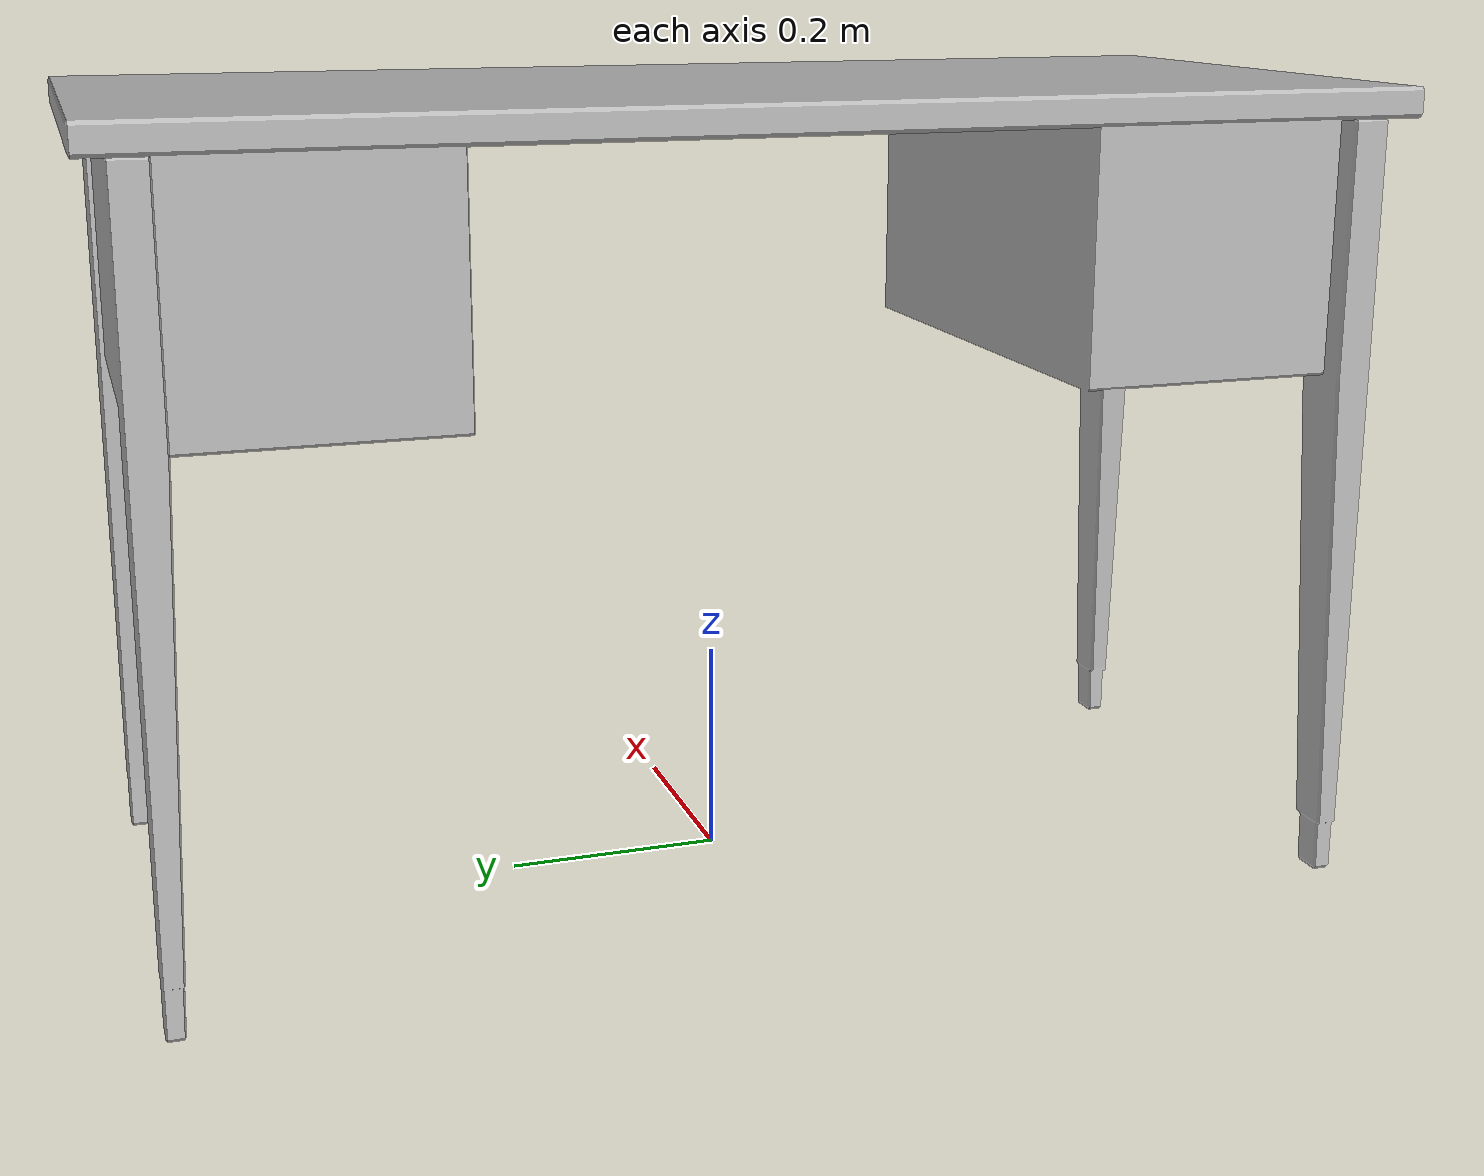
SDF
<?xml version="1.0"?>
<sdf version="1.6">
  <model name="aws_robomaker_residential_ReadingDesk_01">
    <link name="link_ReadingDesk_01">
      <inertial>
        <mass>14.6</mass>
        <inertia>
          <ixx>0.78</ixx>
          <ixy>0</ixy>
          <ixz>0</ixz>
          <iyy>0.273</iyy>
          <iyz>0</iyz>
          <izz> 0.57375</izz>
        </inertia>
      </inertial>
      <collision name="collision">
        <geometry>
          <mesh>
            <uri>model://aws_robomaker_residential_ReadingDesk_01/meshes/aws_ReadingDesk_01_collision.DAE</uri>
            <scale>1 1 1</scale>
          </mesh>
        </geometry>
      </collision>
      <visual name="visual">
        <geometry>
          <mesh>
            <uri>model://aws_robomaker_residential_ReadingDesk_01/meshes/aws_ReadingDesk_01_visual.DAE</uri>
          </mesh>
        </geometry>
        <meta>
          <layer> 1 </layer>
        </meta>
      </visual>
    </link>
  </model>
</sdf>
